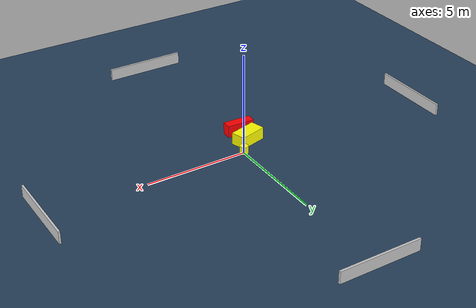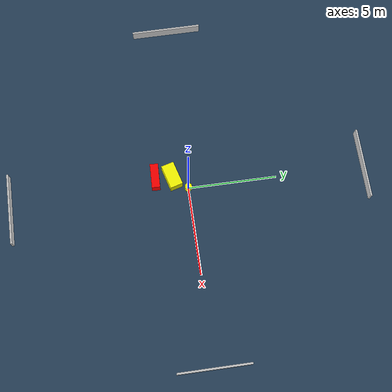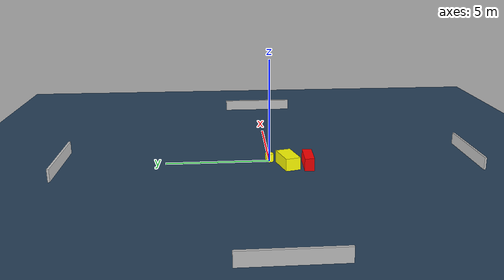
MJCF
<?xml version="1.0" ?>
<mujoco model="generated_environment">
  <option timestep="0.01" integrator="RK4" cone="elliptic"/>
  <default>
    <geom density="1"/>
  </default>
  <asset>
    <texture builtin="gradient" height="3072" name="skybox" rgb1="0.3 0.5 0.7" rgb2="0 0 0" type="skybox" width="512"/>
    <texture builtin="checker" height="300" name="groundplane" rgb1="0.2 0.3 0.4" rgb2="0.1 0.2 0.3" type="2d" width="300"/>
    <material name="groundplane" reflectance="0.2" texrepeat="5 5" texture="groundplane"/>
  </asset>
  <worldbody>
    <light dir="0 0 -1" directional="true" pos="0 0 1.5"/>
    <geom condim="3" friction="0.5 0.005 0.001" material="groundplane" name="floor" pos="0 0 0" size="0 0 0.05" type="plane"/>
    <body name="walls">
      <geom name="wall_1" condim="4" pos="-10.0 0.0 0.3" rgba="0.800000011920929 0.800000011920929 0.800000011920929 1.0" size="0.05 2.0 0.3" type="box"/>
      <geom name="wall_2" condim="4" pos="10.0 0.0 0.3" rgba="0.800000011920929 0.800000011920929 0.800000011920929 1.0" size="0.05 2.0 0.3" type="box"/>
      <geom name="wall_3" condim="4" pos="0.0 -10.0 0.3" rgba="0.800000011920929 0.800000011920929 0.800000011920929 1.0" size="2.0 0.05 0.3" type="box"/>
      <geom name="wall_4" condim="4" pos="0.0 10.0 0.3" rgba="0.800000011920929 0.800000011920929 0.800000011920929 1.0" size="2.0 0.05 0.3" type="box"/>
    </body>
    <body name="robot">
      <joint name="joint_x" type="slide" pos="0 0 0" axis="1 0 0"/>
      <joint name="joint_y" type="slide" pos="0 0 0" axis="0 1 0"/>
      <geom name="robot" type="cylinder" pos="0.0 0.0 0.2" size="0.2 0.2 0.0" mass="5.0" friction="1.0 0.005 0.0001" condim="4" rgba="1.0 1.0 0.0 1.0"/>
    </body>
    <body name="obstacle_1_movable">
      <geom name="obstacle_1_movable" condim="4" pos="-0.7306312899017992 -0.8315031531731988 0.3" euler="0 0 105.44893751966666" friction="0.0 0.005 0.001" rgba="1.0 1.0 0.0 1.0" size="0.36468461388646045 0.6891583328123617 0.3" type="box" mass="0.1"/>
      <joint type="free"/>
    </body>
    <body name="obstacle_2_static">
      <geom name="obstacle_2_static" condim="4" pos="-0.8213176886600867 -1.7871109047018512 0.3" euler="0 0 88.10649367206808" friction="0.0 0.005 0.001" rgba="1.0 0.0 0.0 1.0" size="0.23166773703043753 0.6942210410600871 0.3" type="box"/>
    </body>
  </worldbody>
  <actuator>
    <motor name="actuator_x" joint="joint_x" gear="1" ctrlrange="-1 1"/>
    <motor name="actuator_y" joint="joint_y" gear="1" ctrlrange="-1 1"/>
  </actuator>
</mujoco>
